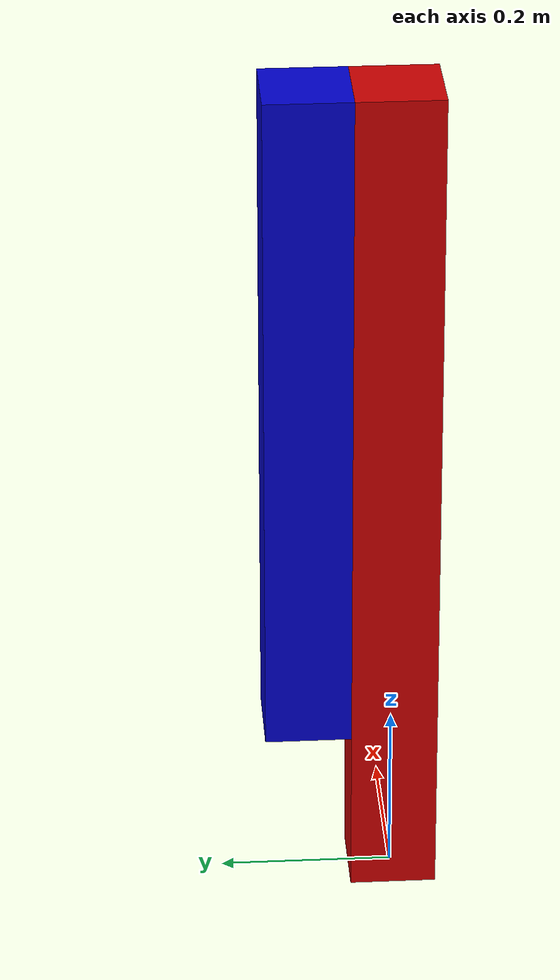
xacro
<?xml version="1.0"?>
<robot name="simple_robot" xmlns:xacro="http://ros.org/wiki/xacro">

  <material name="white">
    <color rgba="1 1 1 0.9"/>
  </material>

  <material name="blue">
    <color rgba="0 0 0.8 0.9"/>
  </material>

  <material name="red">
    <color rgba="0.8 0 0 0.9"/>
  </material>

  <xacro:macro name="inertial_for_box" params="width height depth mass">
    <inertial>
      <mass value="${mass}" />
      <inertia ixx="${(mass/12.0)*(height*height + depth*depth)}" ixy="0.0" ixz="0.0"
        iyy="${(mass/12.0)*(width*width + height*height)}" iyz="0.0"
        izz="${(mass/12.0)*(width*width + depth*depth)}" />
    </inertial>
  </xacro:macro>

  <link name="base_link">
    <collision>
      <geometry>
        <box size="1 1 0.0001"/>
      </geometry>
    </collision>
  </link>

  <link name="robot_base">
    <visual>
      <geometry>
        <box size="0.1 0.1 1.0"/>
      </geometry>
      <material name="red" />
    </visual>
    <collision>
      <geometry>
        <box size="0.1 0.1 1.0"/>
      </geometry>
    </collision>
    <xacro:inertial_for_box width="0.6" height="0.1" depth="0.2" mass="10" />
  </link>

  <link name="robot_arm">
    <visual>
      <geometry>
        <box size="0.1 0.1 0.8"/>
      </geometry>
      <origin rpy="0 0 0" xyz="0 0 -0.35"/>
      <material name="blue" />
    </visual>
    <collision>
      <geometry>
        <box size="0.1 0.1 0.8"/>
      </geometry>
      <origin rpy="0 0 0" xyz="0 0 -0.35"/>
    </collision>
    <xacro:inertial_for_box width="0.6" height="0.1" depth="0.2" mass="200" />
  </link>

  <joint name="robot_base_to_base_link" type="fixed">
    <parent link="base_link"/>
    <child link="robot_base"/>
    <origin rpy="0 0 0" xyz="0 0 0.5"/>
  </joint>

  <joint name="the_joint" type="revolute">
    <parent link="robot_base"/>
    <child link="robot_arm"/>
    <origin rpy="0 0 0" xyz="0 0.1 0.45"/>
    <axis rpy="0 0 0" xyz="0 1 0"/>
    <limit effort="100.0" lower="-3" upper="3" velocity="100.0"/>
    <dynamics damping="0.2" friction="0.001"/>
  </joint>

  <gazebo>
    <plugin filename="ignition-gazebo-joint-position-controller-system" name="ignition::gazebo::systems::JointPositionController">
      <joint_name>the_joint</joint_name>
		  <p_gain>10000</p_gain>
		  <i_gain>0.1</i_gain>
		  <d_gain>5000</d_gain>
		  <i_max>1</i_max>
		  <i_min>-1</i_min>
      <cmd_max>1000</cmd_max>
      <cmd_min>-1000</cmd_min>
		</plugin>

  </gazebo>
</robot>
